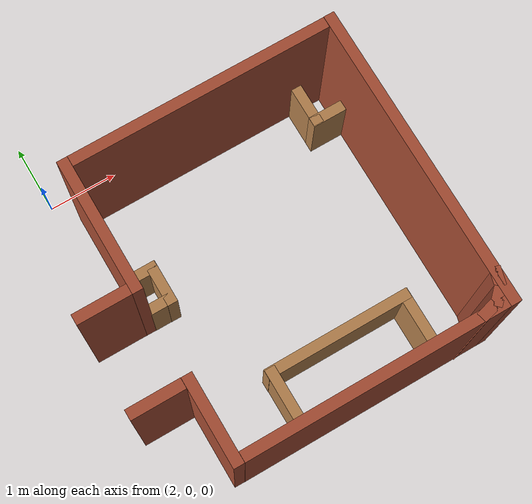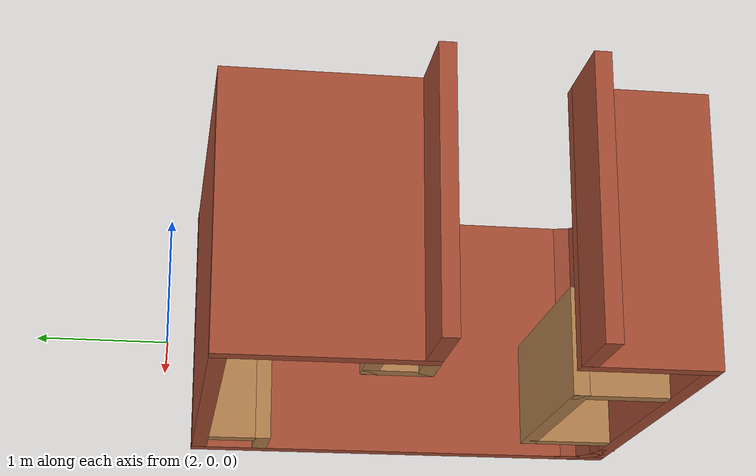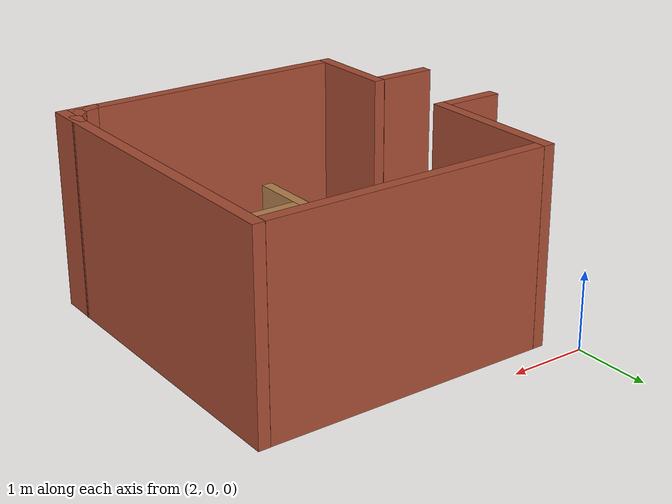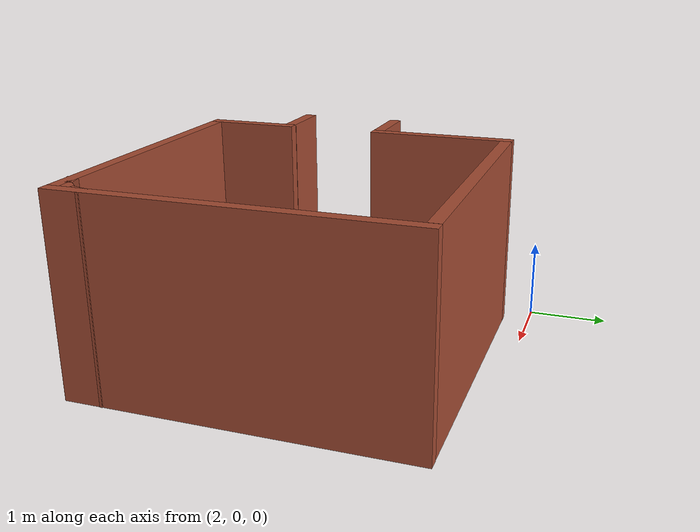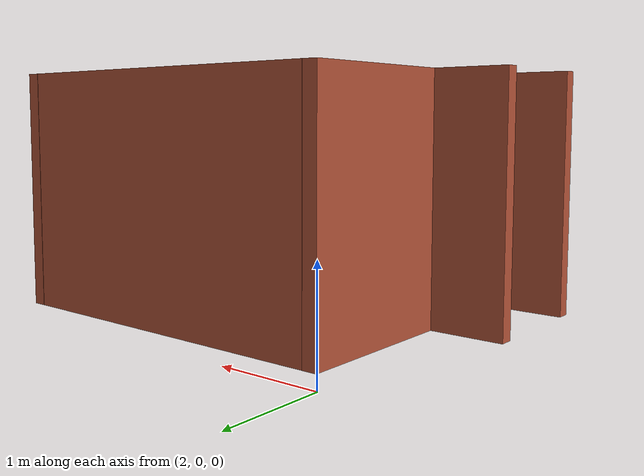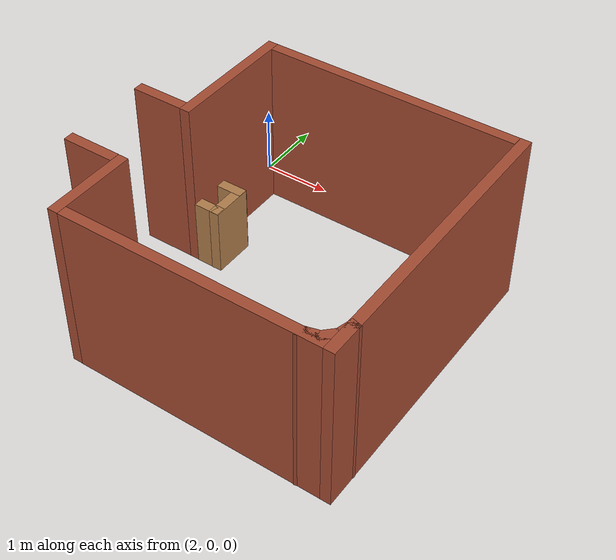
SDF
<?xml version='1.0'?>
<sdf version='1.6'>
  <model name='living_room'>
    <pose frame=''>3.88419 -2.48812 0 0 -0 0</pose>
    <link name='Wall_0'>
      <collision name='Wall_0_Collision'>
        <geometry>
          <box>
            <size>3.65 0.15 2.5</size>
          </box>
        </geometry>
        <pose frame=''>0 0 1.25 0 -0 0</pose>
      </collision>
      <visual name='Wall_0_Visual'>
        <pose frame=''>0 0 1.25 0 -0 0</pose>
        <geometry>
          <box>
            <size>3.65 0.15 2.5</size>
          </box>
        </geometry>
        <material>
          <script>
            <uri>file://media/materials/scripts/gazebo.material</uri>
            <name>Gazebo/Bricks</name>
          </script>
          <ambient>1 1 1 1</ambient>
        </material>
        <meta>
          <layer>0</layer>
        </meta>
      </visual>
      <pose frame=''>0.368394 2.07812 0 0 -0 0</pose>
    </link>
    <link name='Wall_10'>
      <collision name='Wall_10_Collision'>
        <geometry>
          <box>
            <size>1.23 0.15 2.5</size>
          </box>
        </geometry>
        <pose frame=''>0 0 1.25 0 -0 0</pose>
      </collision>
      <visual name='Wall_10_Visual'>
        <pose frame=''>0 0 1.25 0 -0 0</pose>
        <geometry>
          <box>
            <size>1.23 0.15 2.5</size>
          </box>
        </geometry>
        <material>
          <script>
            <uri>file://media/materials/scripts/gazebo.material</uri>
            <name>Gazebo/Bricks</name>
          </script>
          <ambient>1 1 1 1</ambient>
        </material>
        <meta>
          <layer>0</layer>
        </meta>
      </visual>
      <pose frame=''>-1.52964 -1.5267 0 0 -0 1.5708</pose>
    </link>
    <link name='Wall_12'>
      <collision name='Wall_12_Collision'>
        <geometry>
          <box>
            <size>0.38 0.15 1</size>
          </box>
        </geometry>
        <pose frame=''>0 0 0.5 0 -0 0</pose>
      </collision>
      <visual name='Wall_12_Visual'>
        <pose frame=''>0 0 0.5 0 -0 0</pose>
        <geometry>
          <box>
            <size>0.38 0.15 1</size>
          </box>
        </geometry>
        <material>
          <script>
            <uri>file://media/materials/scripts/gazebo.material</uri>
            <name>Gazebo/Wood</name>
          </script>
          <ambient>1 1 1 1</ambient>
        </material>
        <meta>
          <layer>0</layer>
        </meta>
      </visual>
      <pose frame=''>-1.27581 0.315099 0 0 -0 0</pose>
    </link>
    <link name='Wall_15'>
      <collision name='Wall_15_Collision'>
        <geometry>
          <box>
            <size>0.62 0.15 1</size>
          </box>
        </geometry>
        <pose frame=''>0 0 0.5 0 -0 0</pose>
      </collision>
      <visual name='Wall_15_Visual'>
        <pose frame=''>0 0 0.5 0 -0 0</pose>
        <geometry>
          <box>
            <size>0.62 0.15 1</size>
          </box>
        </geometry>
        <material>
          <script>
            <uri>file://media/materials/scripts/gazebo.material</uri>
            <name>Gazebo/Wood</name>
          </script>
          <ambient>1 1 1 1</ambient>
        </material>
        <meta>
          <layer>0</layer>
        </meta>
      </visual>
      <pose frame=''>-1.14877 0.547402 0 0 -0 1.5708</pose>
    </link>
    <link name='Wall_17'>
      <collision name='Wall_17_Collision'>
        <geometry>
          <box>
            <size>0.38 0.15 1</size>
          </box>
        </geometry>
        <pose frame=''>0 0 0.5 0 -0 0</pose>
      </collision>
      <visual name='Wall_17_Visual'>
        <pose frame=''>0 0 0.5 0 -0 0</pose>
        <geometry>
          <box>
            <size>0.38 0.15 1</size>
          </box>
        </geometry>
        <material>
          <script>
            <uri>file://media/materials/scripts/gazebo.material</uri>
            <name>Gazebo/Wood</name>
          </script>
          <ambient>1 1 1 1</ambient>
        </material>
        <meta>
          <layer>0</layer>
        </meta>
      </visual>
      <pose frame=''>-1.26895 0.793416 0 0 -0 3.14159</pose>
    </link>
    <link name='Wall_19'>
      <collision name='Wall_19_Collision'>
        <geometry>
          <box>
            <size>0.6 0.15 1</size>
          </box>
        </geometry>
        <pose frame=''>0 0 0.5 0 -0 0</pose>
      </collision>
      <visual name='Wall_19_Visual'>
        <pose frame=''>0 0 0.5 0 -0 0</pose>
        <geometry>
          <box>
            <size>0.6 0.15 1</size>
          </box>
        </geometry>
        <material>
          <script>
            <uri>file://media/materials/scripts/gazebo.material</uri>
            <name>Gazebo/Wood</name>
          </script>
          <ambient>1 1 1 1</ambient>
        </material>
        <meta>
          <layer>0</layer>
        </meta>
      </visual>
      <pose frame=''>1.77181 1.70512 0 0 0 -1.5708</pose>
    </link>
    <link name='Wall_2'>
      <collision name='Wall_2_Collision'>
        <geometry>
          <box>
            <size>4.3 0.15 2.5</size>
          </box>
        </geometry>
        <pose frame=''>0 0 1.25 0 -0 0</pose>
      </collision>
      <visual name='Wall_2_Visual'>
        <pose frame=''>0 0 1.25 0 -0 0</pose>
        <geometry>
          <box>
            <size>4.3 0.15 2.5</size>
          </box>
        </geometry>
        <material>
          <script>
            <uri>file://media/materials/scripts/gazebo.material</uri>
            <name>Gazebo/Bricks</name>
          </script>
          <ambient>1 1 1 1</ambient>
        </material>
        <meta>
          <layer>0</layer>
        </meta>
      </visual>
      <pose frame=''>2.27109 0.00582 0 0 0 -1.5708</pose>
    </link>
    <link name='Wall_21'>
      <collision name='Wall_21_Collision'>
        <geometry>
          <box>
            <size>0.5 0.15 1</size>
          </box>
        </geometry>
        <pose frame=''>0 0 0.5 0 -0 0</pose>
      </collision>
      <visual name='Wall_21_Visual'>
        <pose frame=''>0 0 0.5 0 -0 0</pose>
        <geometry>
          <box>
            <size>0.5 0.15 1</size>
          </box>
        </geometry>
        <material>
          <script>
            <uri>file://media/materials/scripts/gazebo.material</uri>
            <name>Gazebo/Wood</name>
          </script>
          <ambient>1 1 1 1</ambient>
        </material>
        <meta>
          <layer>0</layer>
        </meta>
      </visual>
      <pose frame=''>1.94581 1.46912 0 0 -0 0</pose>
    </link>
    <link name='Wall_23'>
      <collision name='Wall_23_Collision'>
        <geometry>
          <box>
            <size>0.88 0.15 1</size>
          </box>
        </geometry>
        <pose frame=''>0 0 0.5 0 -0 0</pose>
      </collision>
      <visual name='Wall_23_Visual'>
        <pose frame=''>0 0 0.5 0 -0 0</pose>
        <geometry>
          <box>
            <size>0.88 0.15 1</size>
          </box>
        </geometry>
        <material>
          <script>
            <uri>file://media/materials/scripts/gazebo.material</uri>
            <name>Gazebo/Wood</name>
          </script>
          <ambient>1 1 1 1</ambient>
        </material>
        <meta>
          <layer>0</layer>
        </meta>
      </visual>
      <pose frame=''>-0.49619 -1.56388 0 0 -0 1.5708</pose>
    </link>
    <link name='Wall_25'>
      <collision name='Wall_25_Collision'>
        <geometry>
          <box>
            <size>2.16 0.15 1</size>
          </box>
        </geometry>
        <pose frame=''>0 0 0.5 0 -0 0</pose>
      </collision>
      <visual name='Wall_25_Visual'>
        <pose frame=''>0 0 0.5 0 -0 0</pose>
        <geometry>
          <box>
            <size>2.16 0.15 1</size>
          </box>
        </geometry>
        <material>
          <script>
            <uri>file://media/materials/scripts/gazebo.material</uri>
            <name>Gazebo/Wood</name>
          </script>
          <ambient>1 1 1 1</ambient>
        </material>
        <meta>
          <layer>0</layer>
        </meta>
      </visual>
      <pose frame=''>0.504809 -1.18388 0 0 -0 0</pose>
    </link>
    <link name='Wall_27'>
      <collision name='Wall_27_Collision'>
        <geometry>
          <box>
            <size>0.88 0.15 1</size>
          </box>
        </geometry>
        <pose frame=''>0 0 0.5 0 -0 0</pose>
      </collision>
      <visual name='Wall_27_Visual'>
        <pose frame=''>0 0 0.5 0 -0 0</pose>
        <geometry>
          <box>
            <size>0.88 0.15 1</size>
          </box>
        </geometry>
        <material>
          <script>
            <uri>file://media/materials/scripts/gazebo.material</uri>
            <name>Gazebo/Wood</name>
          </script>
          <ambient>1 1 1 1</ambient>
        </material>
        <meta>
          <layer>0</layer>
        </meta>
      </visual>
      <pose frame=''>1.5134 -1.55443 0 0 0 -1.5708</pose>
    </link>
    <link name='Wall_39'>
      <collision name='Wall_39_Collision'>
        <geometry>
          <box>
            <size>0.25 0.15 2.5</size>
          </box>
        </geometry>
        <pose frame=''>0 0 1.25 0 -0 0</pose>
      </collision>
      <visual name='Wall_39_Visual'>
        <pose frame=''>0 0 1.25 0 -0 0</pose>
        <geometry>
          <box>
            <size>0.25 0.15 2.5</size>
          </box>
        </geometry>
        <material>
          <script>
            <uri>file://media/materials/scripts/gazebo.material</uri>
            <name>Gazebo/Bricks</name>
          </script>
          <ambient>1 1 1 1</ambient>
        </material>
        <meta>
          <layer>0</layer>
        </meta>
      </visual>
      <pose frame=''>2.12701 -1.96165 0 0 0 -2.35619</pose>
    </link>
    <link name='Wall_4'>
      <collision name='Wall_4_Collision'>
        <geometry>
          <box>
            <size>3.65 0.15 2.5</size>
          </box>
        </geometry>
        <pose frame=''>0 0 1.25 0 -0 0</pose>
      </collision>
      <visual name='Wall_4_Visual'>
        <pose frame=''>0 0 1.25 0 -0 0</pose>
        <geometry>
          <box>
            <size>3.65 0.15 2.5</size>
          </box>
        </geometry>
        <material>
          <script>
            <uri>file://media/materials/scripts/gazebo.material</uri>
            <name>Gazebo/Bricks</name>
          </script>
          <ambient>1 1 1 1</ambient>
        </material>
        <meta>
          <layer>0</layer>
        </meta>
      </visual>
      <pose frame=''>0.371564 -2.0686 0 0 -0 3.14159</pose>
    </link>
    <link name='Wall_41'>
      <collision name='Wall_41_Collision'>
        <geometry>
          <box>
            <size>0.25 0.15 2.5</size>
          </box>
        </geometry>
        <pose frame=''>0 0 1.25 0 -0 0</pose>
      </collision>
      <visual name='Wall_41_Visual'>
        <pose frame=''>0 0 1.25 0 -0 0</pose>
        <geometry>
          <box>
            <size>0.25 0.15 2.5</size>
          </box>
        </geometry>
        <material>
          <script>
            <uri>file://media/materials/scripts/gazebo.material</uri>
            <name>Gazebo/Bricks</name>
          </script>
          <ambient>1 1 1 1</ambient>
        </material>
        <meta>
          <layer>0</layer>
        </meta>
      </visual>
      <pose frame=''>1.93354 -2.05102 0 0 -0 0.261799</pose>
    </link>
    <link name='Wall_43'>
      <collision name='Wall_43_Collision'>
        <geometry>
          <box>
            <size>0.25 0.15 2.5</size>
          </box>
        </geometry>
        <pose frame=''>0 0 1.25 0 -0 0</pose>
      </collision>
      <visual name='Wall_43_Visual'>
        <pose frame=''>0 0 1.25 0 -0 0</pose>
        <geometry>
          <box>
            <size>0.25 0.15 2.5</size>
          </box>
        </geometry>
        <material>
          <script>
            <uri>file://media/materials/scripts/gazebo.material</uri>
            <name>Gazebo/Bricks</name>
          </script>
          <ambient>1 1 1 1</ambient>
        </material>
        <meta>
          <layer>0</layer>
        </meta>
      </visual>
      <pose frame=''>2.25163 -1.75344 0 0 0 -1.8326</pose>
    </link>
    <link name='Wall_47'>
      <collision name='Wall_47_Collision'>
        <geometry>
          <box>
            <size>0.75 0.15 2.5</size>
          </box>
        </geometry>
        <pose frame=''>0 0 1.25 0 -0 0</pose>
      </collision>
      <visual name='Wall_47_Visual'>
        <pose frame=''>0 0 1.25 0 -0 0</pose>
        <geometry>
          <box>
            <size>0.75 0.15 2.5</size>
          </box>
        </geometry>
        <material>
          <script>
            <uri>file://media/materials/scripts/gazebo.material</uri>
            <name>Gazebo/Bricks</name>
          </script>
          <ambient>1 1 1 1</ambient>
        </material>
        <meta>
          <layer>0</layer>
        </meta>
      </visual>
      <pose frame=''>-1.98127 -0.984617 0 0 -0 0</pose>
    </link>
    <link name='Wall_6'>
      <collision name='Wall_6_Collision'>
        <geometry>
          <box>
            <size>1.91 0.15 2.5</size>
          </box>
        </geometry>
        <pose frame=''>0 0 1.25 0 -0 0</pose>
      </collision>
      <visual name='Wall_6_Visual'>
        <pose frame=''>0 0 1.25 0 -0 0</pose>
        <geometry>
          <box>
            <size>1.91 0.15 2.5</size>
          </box>
        </geometry>
        <material>
          <script>
            <uri>file://media/materials/scripts/gazebo.material</uri>
            <name>Gazebo/Bricks</name>
          </script>
          <ambient>1 1 1 1</ambient>
        </material>
        <meta>
          <layer>0</layer>
        </meta>
      </visual>
      <pose frame=''>-1.53283 1.19812 0 0 0 -1.5708</pose>
    </link>
    <link name='Wall_8'>
      <collision name='Wall_8_Collision'>
        <geometry>
          <box>
            <size>0.75 0.15 2.5</size>
          </box>
        </geometry>
        <pose frame=''>0 0 1.25 0 -0 0</pose>
      </collision>
      <visual name='Wall_8_Visual'>
        <pose frame=''>0 0 1.25 0 -0 0</pose>
        <geometry>
          <box>
            <size>0.75 0.15 2.5</size>
          </box>
        </geometry>
        <material>
          <script>
            <uri>file://media/materials/scripts/gazebo.material</uri>
            <name>Gazebo/Bricks</name>
          </script>
          <ambient>1 1 1 1</ambient>
        </material>
        <meta>
          <layer>0</layer>
        </meta>
      </visual>
      <pose frame=''>-1.98142 0.319503 0 0 -0 0</pose>
    </link>
    <static>1</static>
  </model>
</sdf>
